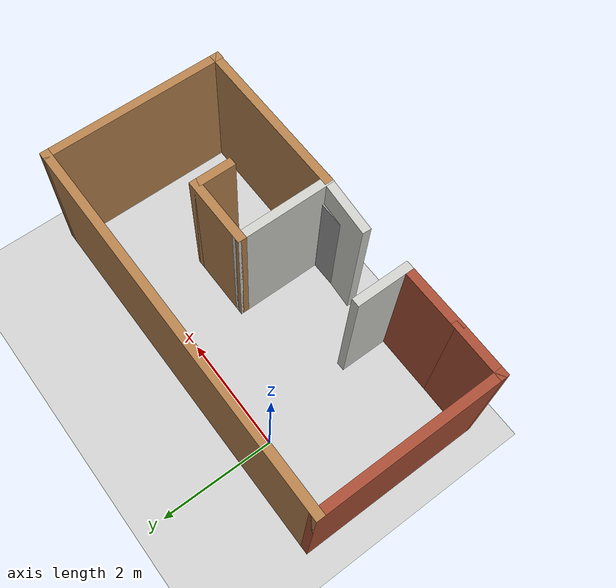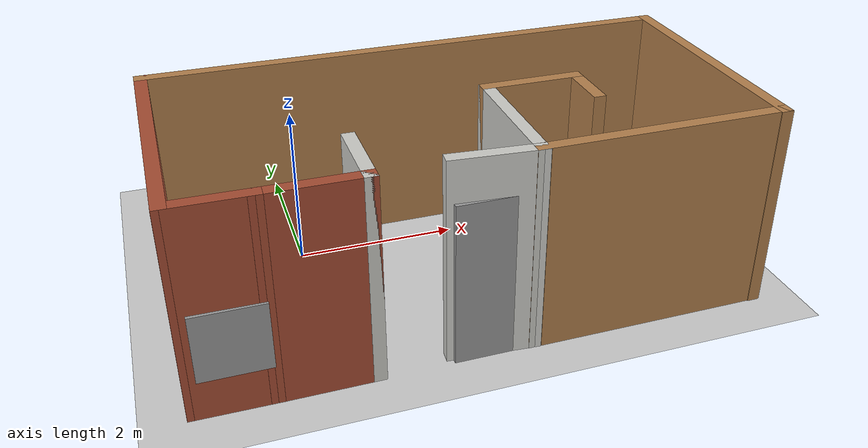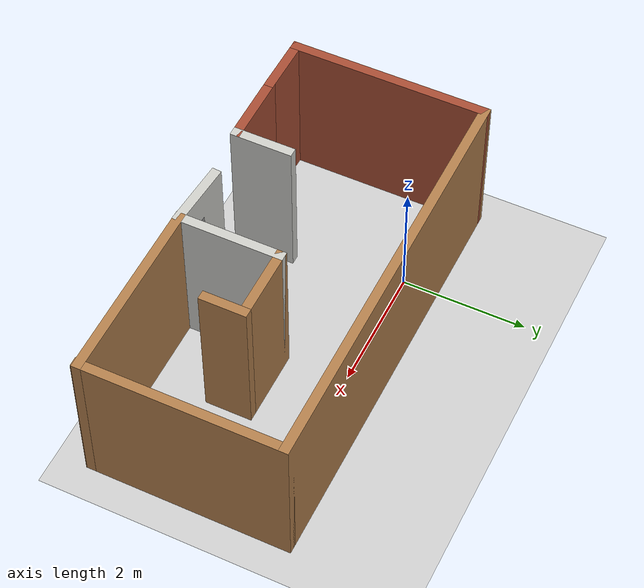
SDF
<sdf version="1.7">
 <world name="default">
  <light name="sun" type="directional">
   <pose>0 0 10 0 -0 0</pose>
   <diffuse>0.8 0.8 0.8 1</diffuse>
   <specular>0.2 0.2 0.2 1</specular>
   <attenuation>
    <range>1000</range>
    <constant>0.9</constant>
    <linear>0.01</linear>
    <quadratic>0.001</quadratic>
   </attenuation>
   <direction>-0.5 0.1 -0.9</direction>
   <spot><inner_angle>0</inner_angle><outer_angle>0</outer_angle><falloff>0</falloff></spot>
  </light>
  <model name="ground_plane">
   <static>1</static>
   <link name="link">
    <collision name="collision">
     <geometry><plane><normal>0 0 1</normal><size>100 100</size></plane></geometry>
     <surface><friction><ode><mu>100</mu><mu2>50</mu2></ode></friction></surface>
    </collision>
    <visual name="visual">
     <cast_shadows>0</cast_shadows>
     <geometry><plane><normal>0 0 1</normal><size>100 100</size></plane></geometry>
     <material>
      <script><uri>file://media/materials/scripts/gazebo.material</uri><name>Gazebo/Grey</name></script>
     </material>
    </visual>
   </link>
  </model>
  <gravity>0 0 -9.8</gravity>
  <magnetic_field>6e-06 2.3e-05 -4.2e-05</magnetic_field>
  <atmosphere type="adiabatic"/>
  <physics type="ode">
   <max_step_size>0.001</max_step_size>
   <real_time_factor>1</real_time_factor>
   <real_time_update_rate>1000</real_time_update_rate>
  </physics>
  <scene><ambient>0.4 0.4 0.4 1</ambient><background>0.7 0.7 0.7 1</background><shadows>1</shadows></scene>
  <audio><device>default</device></audio>
  <spherical_coordinates>
   <surface_model>EARTH_WGS84</surface_model>
   <latitude_deg>0</latitude_deg>
   <longitude_deg>0</longitude_deg>
   <elevation>0</elevation>
   <heading_deg>0</heading_deg>
  </spherical_coordinates>
  <model name="mini_bot_house">
   <pose>1.67873 -1.0642 0 0 -0 0</pose>
   <link name="Door_0">
    <collision name="Door_0_Collision">
     <geometry><box><size>0.9 0.17 2</size></box></geometry>
     <pose>0 0 1 0 -0 0</pose>
    </collision>
    <visual name="Door_0_Visual">
     <pose>0 0 1 0 -0 0</pose>
     <geometry><box><size>0.9 0.17 2</size></box></geometry>
     <material>
      <script><uri>file://media/materials/scripts/gazebo.material</uri><name>Gazebo/Grey</name></script>
     </material>
    </visual>
    <pose>-0.039567 -1.52 0 0 -0 0</pose>
   </link>
   <link name="Wall_0">
    <collision name="Wall_0_Collision">
     <geometry><box><size>3.25 0.15 2.5</size></box></geometry>
     <pose>0 0 1.25 0 -0 0</pose>
    </collision>
    <visual name="Wall_0_Visual">
     <pose>0 0 1.25 0 -0 0</pose>
     <geometry><box><size>3.25 0.15 2.5</size></box></geometry>
     <material>
      <script><uri>file://media/materials/scripts/gazebo.material</uri><name>Gazebo/Bricks</name></script>
      <ambient>1 1 1 1</ambient>
     </material>
     <meta><layer>0</layer></meta>
    </visual>
    <pose>-3.29957 0.01 0 0 -0 1.5708</pose>
   </link>
   <link name="Wall_1">
    <collision name="Wall_1_Collision">
     <geometry><box><size>6.75 0.15 2.5</size></box></geometry>
     <pose>0 0 1.25 0 -0 0</pose>
    </collision>
    <visual name="Wall_1_Visual">
     <pose>0 0 1.25 0 -0 0</pose>
     <geometry><box><size>6.75 0.15 2.5</size></box></geometry>
     <material>
      <script><uri>file://media/materials/scripts/gazebo.material</uri><name>Gazebo/Wood</name></script>
      <ambient>1 1 1 1</ambient>
     </material>
     <meta><layer>0</layer></meta>
    </visual>
    <pose>0.000433 1.56 0 0 -0 0</pose>
   </link>
   <link name="Wall_11">
    <collision name="Wall_11_Collision">
     <geometry><box><size>1 0.15 2.5</size></box></geometry>
     <pose>0 0 1.25 0 -0 0</pose>
    </collision>
    <visual name="Wall_11_Visual">
     <pose>0 0 1.25 0 -0 0</pose>
     <geometry><box><size>1 0.15 2.5</size></box></geometry>
     <material>
      <script><uri>file://media/materials/scripts/gazebo.material</uri><name>Gazebo/CeilingTiled</name></script>
      <ambient>1 1 1 1</ambient>
     </material>
     <meta><layer>0</layer></meta>
    </visual>
    <pose>-1.33957 -1.125 0 0 -0 1.5708</pose>
   </link>
   <link name="Wall_13">
    <collision name="Wall_13_Collision">
     <geometry><box><size>1.01006 0.15 2.5</size></box></geometry>
     <pose>0 0 1.25 0 -0 0</pose>
    </collision>
    <visual name="Wall_13_Visual">
     <pose>0 0 1.25 0 -0 0</pose>
     <geometry><box><size>1.01006 0.15 2.5</size></box></geometry>
     <material>
      <script><uri>file://media/materials/scripts/gazebo.material</uri><name>Gazebo/Bricks</name></script>
      <ambient>1 1 1 1</ambient>
     </material>
     <meta><layer>0</layer></meta>
    </visual>
    <pose>-2.86957 -1.545 0 0 -0 3.12996</pose>
   </link>
   <link name="Wall_15">
    <collision name="Wall_15_Collision">
     <geometry><box><size>1.09338 0.15 2.5</size></box></geometry>
     <pose>0 0 1.25 0 -0 0</pose>
    </collision>
    <visual name="Wall_15_Visual">
     <pose>0 0 1.25 0 -0 0</pose>
     <geometry><box><size>1.09338 0.15 2.5</size></box></geometry>
     <material>
      <script><uri>file://media/materials/scripts/gazebo.material</uri><name>Gazebo/CeilingTiled</name></script>
      <ambient>1 1 1 1</ambient>
     </material>
     <meta><layer>0</layer></meta>
    </visual>
    <pose>-0.019837 -1.51342 0 0 -0 -0.077631</pose>
   </link>
   <link name="Wall_2">
    <collision name="Wall_2_Collision">
     <geometry><box><size>3.27 0.15 2.5</size></box></geometry>
     <pose>0 0 1.25 0 -0 0</pose>
    </collision>
    <visual name="Wall_2_Visual">
     <pose>0 0 1.25 0 -0 0</pose>
     <geometry><box><size>3.27 0.15 2.5</size></box></geometry>
     <material>
      <script><uri>file://media/materials/scripts/gazebo.material</uri><name>Gazebo/Wood</name></script>
      <ambient>1 1 1 1</ambient>
     </material>
     <meta><layer>0</layer></meta>
    </visual>
    <pose>3.30043 0 0 0 -0 -1.5708</pose>
   </link>
   <link name="Wall_3">
    <collision name="Wall_3_Collision">
     <geometry><box><size>3 0.15 2.5</size></box></geometry>
     <pose>0 0 1.25 0 -0 0</pose>
    </collision>
    <visual name="Wall_3_Visual">
     <pose>0 0 1.25 0 -0 0</pose>
     <geometry><box><size>3 0.15 2.5</size></box></geometry>
     <material>
      <script><uri>file://media/materials/scripts/gazebo.material</uri><name>Gazebo/Wood</name></script>
      <ambient>1 1 1 1</ambient>
     </material>
     <meta><layer>0</layer></meta>
    </visual>
    <pose>1.87543 -1.55 0 0 -0 3.14159</pose>
   </link>
   <link name="Wall_5">
    <collision name="Wall_5_Collision">
     <geometry><box><size>1.25 0.15 2.5</size></box></geometry>
     <pose>0 0 1.25 0 -0 0</pose>
    </collision>
    <visual name="Wall_5_Visual">
     <pose>0 0 1.25 0 -0 0</pose>
     <geometry><box><size>1.25 0.15 2.5</size></box></geometry>
     <material>
      <script><uri>file://media/materials/scripts/gazebo.material</uri><name>Gazebo/Bricks</name></script>
      <ambient>1 1 1 1</ambient>
     </material>
     <meta><layer>0</layer></meta>
    </visual>
    <pose>-1.88957 -1.55 0 0 -0 0</pose>
   </link>
   <link name="Wall_7">
    <collision name="Wall_7_Collision">
     <geometry><box><size>1.75 0.15 2.5</size></box></geometry>
     <pose>0 0 1.25 0 -0 0</pose>
    </collision>
    <visual name="Wall_7_Visual">
     <pose>0 0 1.25 0 -0 0</pose>
     <geometry><box><size>1.75 0.15 2.5</size></box></geometry>
     <material>
      <script><uri>file://media/materials/scripts/gazebo.material</uri><name>Gazebo/CeilingTiled</name></script>
      <ambient>1 1 1 1</ambient>
     </material>
     <meta><layer>0</layer></meta>
    </visual>
    <pose>0.450433 -0.75 0 0 -0 1.5708</pose>
   </link>
   <link name="Wall_8">
    <collision name="Wall_8_Collision">
     <geometry><box><size>1.25 0.15 2.5</size></box></geometry>
     <pose>0 0 1.25 0 -0 0</pose>
    </collision>
    <visual name="Wall_8_Visual">
     <pose>0 0 1.25 0 -0 0</pose>
     <geometry><box><size>1.25 0.15 2.5</size></box></geometry>
     <material>
      <script><uri>file://media/materials/scripts/gazebo.material</uri><name>Gazebo/Wood</name></script>
      <ambient>1 1 1 1</ambient>
     </material>
     <meta><layer>0</layer></meta>
    </visual>
    <pose>1.00043 0.05 0 0 -0 0</pose>
   </link>
   <link name="Wall_9">
    <collision name="Wall_9_Collision">
     <geometry><box><size>0.75 0.15 2.5</size></box></geometry>
     <pose>0 0 1.25 0 -0 0</pose>
    </collision>
    <visual name="Wall_9_Visual">
     <pose>0 0 1.25 0 -0 0</pose>
     <geometry><box><size>0.75 0.15 2.5</size></box></geometry>
     <material>
      <script><uri>file://media/materials/scripts/gazebo.material</uri><name>Gazebo/Wood</name></script>
      <ambient>1 1 1 1</ambient>
     </material>
     <meta><layer>0</layer></meta>
    </visual>
    <pose>1.55043 -0.25 0 0 -0 -1.5708</pose>
   </link>
   <link name="Window_0">
    <collision name="Window_0_Collision">
     <geometry><box><size>0.8 0.17 0.8</size></box></geometry>
     <pose>0 0 0.4 0 -0 0</pose>
    </collision>
    <visual name="Window_0_Visual">
     <pose>0 0 0.4 0 -0 0</pose>
     <geometry><box><size>0.8 0.17 0.8</size></box></geometry>
     <material>
      <script><uri>file://media/materials/scripts/gazebo.material</uri><name>Gazebo/Grey</name></script>
     </material>
    </visual>
    <pose>-2.82957 -1.57 0.5 0 -0 0</pose>
   </link>
   <static>1</static>
  </model>
 </world>
</sdf>
